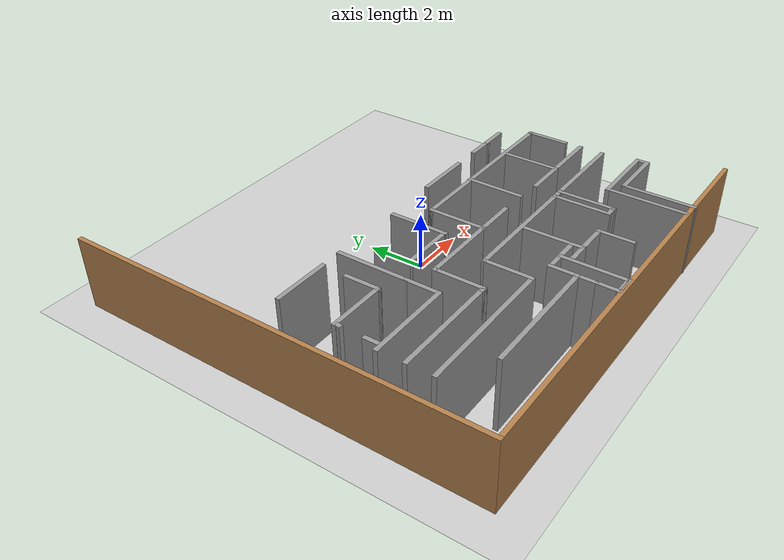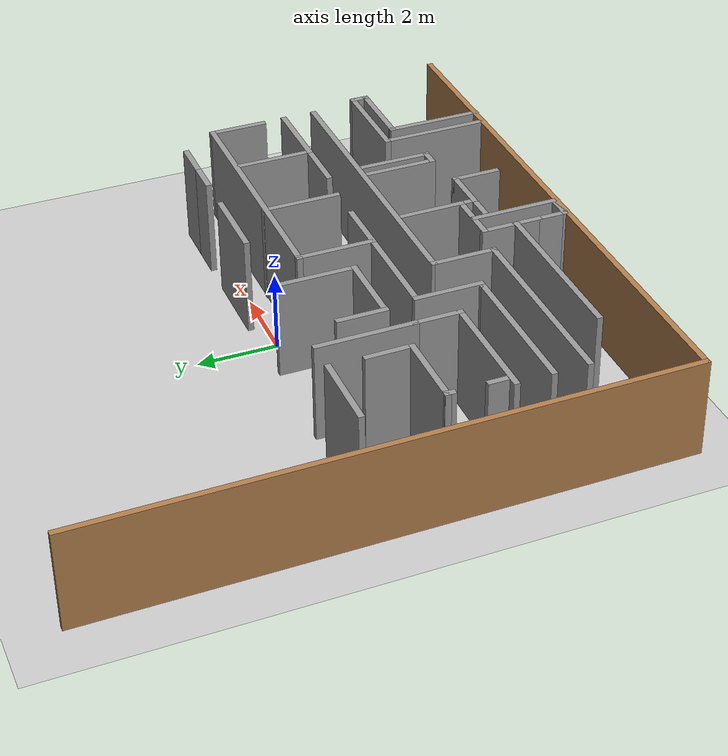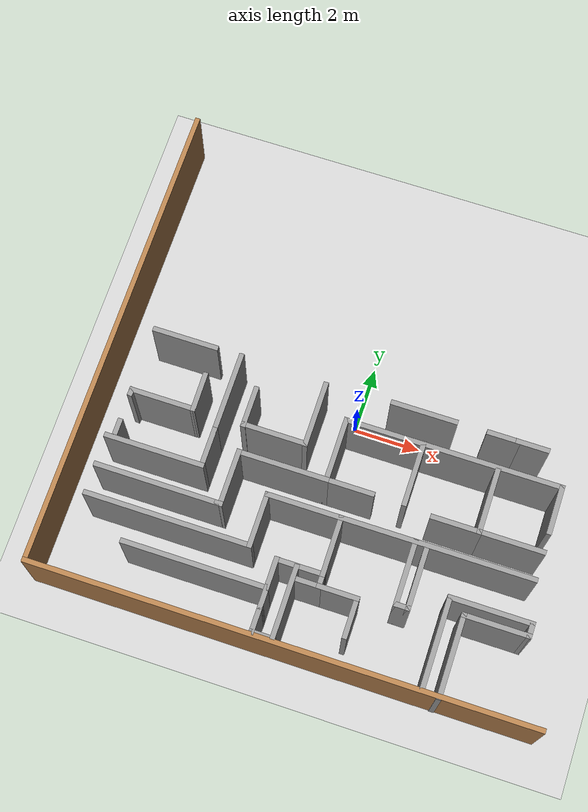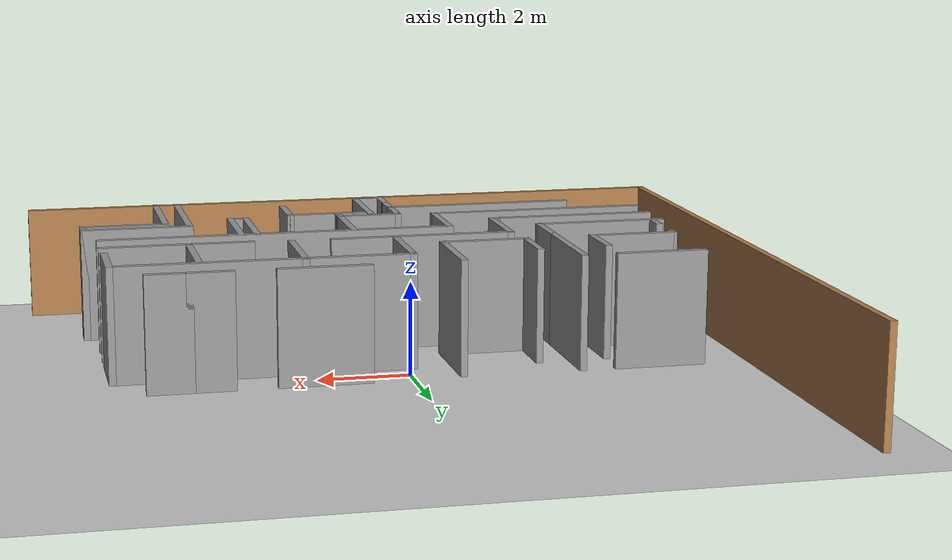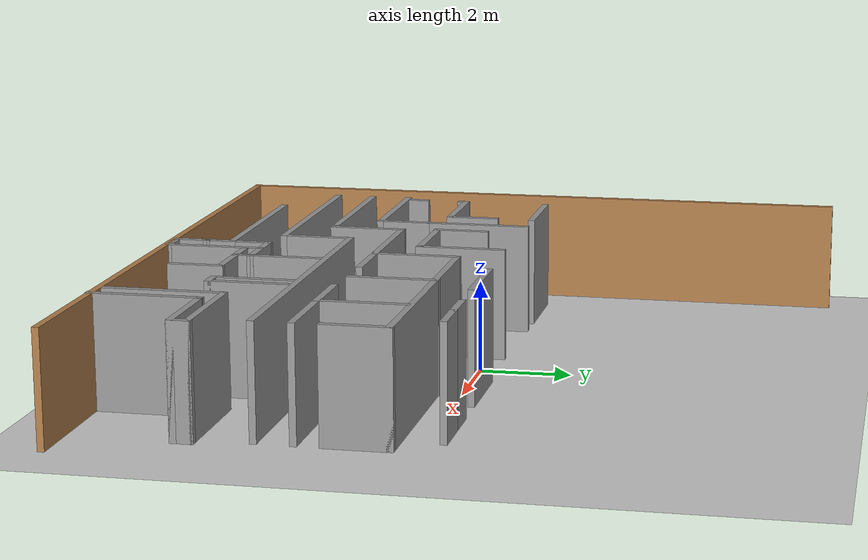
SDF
<sdf version="1.7">
 <world name="default">
  <model name="ground_plane">
   <static>1</static>
   <link name="link">
    <collision name="collision">
     <geometry><plane><normal>0 0 1</normal><size>100 100</size></plane></geometry>
     <surface><friction><ode><mu>100</mu><mu2>50</mu2></ode></friction></surface>
    </collision>
    <visual name="visual">
     <cast_shadows>0</cast_shadows>
     <geometry><plane><normal>0 0 1</normal><size>100 100</size></plane></geometry>
     <material>
      <script><uri>file://media/materials/scripts/gazebo.material</uri><name>Gazebo/Grey</name></script>
     </material>
    </visual>
   </link>
  </model>
  <model name="nidar1">
   <link name="Wall_100">
    <collision name="Wall_100_Collision">
     <geometry><box><size>1.25 0.15 2.5</size></box></geometry>
     <pose>0 0 1.25 0 -0 0</pose>
    </collision>
    <visual name="Wall_100_Visual">
     <pose>0 0 1.25 0 -0 0</pose>
     <geometry><box><size>1.25 0.15 2.5</size></box></geometry>
     <material>
      <script><uri>file://media/materials/scripts/gazebo.material</uri><name>Gazebo/Grey</name></script>
      <ambient>1 1 1 1</ambient>
     </material>
     <meta><layer>0</layer></meta>
    </visual>
    <pose>-3.64531 -2.55736 0 0 -0 -1.5708</pose>
   </link>
   <link name="Wall_101">
    <collision name="Wall_101_Collision">
     <geometry><box><size>3 0.15 2.5</size></box></geometry>
     <pose>0 0 1.25 0 -0 0</pose>
    </collision>
    <visual name="Wall_101_Visual">
     <pose>0 0 1.25 0 -0 0</pose>
     <geometry><box><size>3 0.15 2.5</size></box></geometry>
     <material>
      <script><uri>file://media/materials/scripts/gazebo.material</uri><name>Gazebo/Grey</name></script>
      <ambient>1 1 1 1</ambient>
     </material>
     <meta><layer>0</layer></meta>
    </visual>
    <pose>-5.07031 -3.10737 0 0 -0 3.14159</pose>
   </link>
   <link name="Wall_112">
    <collision name="Wall_112_Collision">
     <geometry><box><size>2 0.15 2.5</size></box></geometry>
     <pose>0 0 1.25 0 -0 0</pose>
    </collision>
    <visual name="Wall_112_Visual">
     <pose>0 0 1.25 0 -0 0</pose>
     <geometry><box><size>2 0.15 2.5</size></box></geometry>
     <material>
      <script><uri>file://media/materials/scripts/gazebo.material</uri><name>Gazebo/Grey</name></script>
      <ambient>1 1 1 1</ambient>
     </material>
     <meta><layer>0</layer></meta>
    </visual>
    <pose>1.86152 0.364029 0 0 -0 3.14159</pose>
   </link>
   <link name="Wall_121">
    <collision name="Wall_121_Collision">
     <geometry><box><size>3.75 0.15 2.5</size></box></geometry>
     <pose>0 0 1.25 0 -0 0</pose>
    </collision>
    <visual name="Wall_121_Visual">
     <pose>0 0 1.25 0 -0 0</pose>
     <geometry><box><size>3.75 0.15 2.5</size></box></geometry>
     <material>
      <script><uri>file://media/materials/scripts/gazebo.material</uri><name>Gazebo/Grey</name></script>
      <ambient>1 1 1 1</ambient>
     </material>
     <meta><layer>0</layer></meta>
    </visual>
    <pose>-4.67849 -4.00366 0 0 -0 0</pose>
   </link>
   <link name="Wall_122">
    <collision name="Wall_122_Collision">
     <geometry><box><size>0.25 0.15 2.5</size></box></geometry>
     <pose>0 0 1.25 0 -0 0</pose>
    </collision>
    <visual name="Wall_122_Visual">
     <pose>0 0 1.25 0 -0 0</pose>
     <geometry><box><size>0.25 0.15 2.5</size></box></geometry>
     <material>
      <script><uri>file://media/materials/scripts/gazebo.material</uri><name>Gazebo/Grey</name></script>
      <ambient>1 1 1 1</ambient>
     </material>
     <meta><layer>0</layer></meta>
    </visual>
    <pose>-2.82849 -4.00366 0 0 -0 0</pose>
   </link>
   <link name="Wall_123">
    <collision name="Wall_123_Collision">
     <geometry><box><size>1.75 0.15 2.5</size></box></geometry>
     <pose>0 0 1.25 0 -0 0</pose>
    </collision>
    <visual name="Wall_123_Visual">
     <pose>0 0 1.25 0 -0 0</pose>
     <geometry><box><size>1.75 0.15 2.5</size></box></geometry>
     <material>
      <script><uri>file://media/materials/scripts/gazebo.material</uri><name>Gazebo/Grey</name></script>
      <ambient>1 1 1 1</ambient>
     </material>
     <meta><layer>0</layer></meta>
    </visual>
    <pose>-2.77849 -3.20366 0 0 -0 1.5708</pose>
   </link>
   <link name="Wall_124">
    <collision name="Wall_124_Collision">
     <geometry><box><size>2.75 0.15 2.5</size></box></geometry>
     <pose>0 0 1.25 0 -0 0</pose>
    </collision>
    <visual name="Wall_124_Visual">
     <pose>0 0 1.25 0 -0 0</pose>
     <geometry><box><size>2.75 0.15 2.5</size></box></geometry>
     <material>
      <script><uri>file://media/materials/scripts/gazebo.material</uri><name>Gazebo/Grey</name></script>
      <ambient>1 1 1 1</ambient>
     </material>
     <meta><layer>0</layer></meta>
    </visual>
    <pose>-1.47849 -2.40366 0 0 -0 0</pose>
   </link>
   <link name="Wall_125">
    <collision name="Wall_125_Collision">
     <geometry><box><size>2 0.15 2.5</size></box></geometry>
     <pose>0 0 1.25 0 -0 0</pose>
    </collision>
    <visual name="Wall_125_Visual">
     <pose>0 0 1.25 0 -0 0</pose>
     <geometry><box><size>2 0.15 2.5</size></box></geometry>
     <material>
      <script><uri>file://media/materials/scripts/gazebo.material</uri><name>Gazebo/Grey</name></script>
      <ambient>1 1 1 1</ambient>
     </material>
     <meta><layer>0</layer></meta>
    </visual>
    <pose>-0.178487 -1.47866 0 0 -0 1.5708</pose>
   </link>
   <link name="Wall_126">
    <collision name="Wall_126_Collision">
     <geometry><box><size>6.5 0.15 2.5</size></box></geometry>
     <pose>0 0 1.25 0 -0 0</pose>
    </collision>
    <visual name="Wall_126_Visual">
     <pose>0 0 1.25 0 -0 0</pose>
     <geometry><box><size>6.5 0.15 2.5</size></box></geometry>
     <material>
      <script><uri>file://media/materials/scripts/gazebo.material</uri><name>Gazebo/Grey</name></script>
      <ambient>1 1 1 1</ambient>
     </material>
     <meta><layer>0</layer></meta>
    </visual>
    <pose>2.99651 -0.553664 0 0 -0 0</pose>
   </link>
   <link name="Wall_127">
    <collision name="Wall_127_Collision">
     <geometry><box><size>1.5 0.15 2.5</size></box></geometry>
     <pose>0 0 1.25 0 -0 0</pose>
    </collision>
    <visual name="Wall_127_Visual">
     <pose>0 0 1.25 0 -0 0</pose>
     <geometry><box><size>1.5 0.15 2.5</size></box></geometry>
     <material>
      <script><uri>file://media/materials/scripts/gazebo.material</uri><name>Gazebo/Grey</name></script>
      <ambient>1 1 1 1</ambient>
     </material>
     <meta><layer>0</layer></meta>
    </visual>
    <pose>6.17151 -1.22866 0 0 -0 -1.5708</pose>
   </link>
   <link name="Wall_131">
    <collision name="Wall_131_Collision">
     <geometry><box><size>2 0.15 2.5</size></box></geometry>
     <pose>0 0 1.25 0 -0 0</pose>
    </collision>
    <visual name="Wall_131_Visual">
     <pose>0 0 1.25 0 -0 0</pose>
     <geometry><box><size>2 0.15 2.5</size></box></geometry>
     <material>
      <script><uri>file://media/materials/scripts/gazebo.material</uri><name>Gazebo/Grey</name></script>
      <ambient>1 1 1 1</ambient>
     </material>
     <meta><layer>0</layer></meta>
    </visual>
    <pose>5.24651 -2.50366 0 0 -0 3.14159</pose>
   </link>
   <link name="Wall_133">
    <collision name="Wall_133_Collision">
     <geometry><box><size>2 0.15 2.5</size></box></geometry>
     <pose>0 0 1.25 0 -0 0</pose>
    </collision>
    <visual name="Wall_133_Visual">
     <pose>0 0 1.25 0 -0 0</pose>
     <geometry><box><size>2 0.15 2.5</size></box></geometry>
     <material>
      <script><uri>file://media/materials/scripts/gazebo.material</uri><name>Gazebo/Grey</name></script>
      <ambient>1 1 1 1</ambient>
     </material>
     <meta><layer>0</layer></meta>
    </visual>
    <pose>4.32151 -1.57866 0 0 -0 1.5708</pose>
   </link>
   <link name="Wall_137">
    <collision name="Wall_137_Collision">
     <geometry><box><size>7.927 0.15 2.5</size></box></geometry>
     <pose>0 0 1.25 0 -0 0</pose>
    </collision>
    <visual name="Wall_137_Visual">
     <pose>0 0 1.25 0 -0 0</pose>
     <geometry><box><size>7.927 0.15 2.5</size></box></geometry>
     <material>
      <script><uri>file://media/materials/scripts/gazebo.material</uri><name>Gazebo/Grey</name></script>
      <ambient>1 1 1 1</ambient>
     </material>
     <meta><layer>0</layer></meta>
    </visual>
    <pose>2.27248 -3.32839 0 0 -0 -3.14034</pose>
   </link>
   <link name="Wall_138">
    <collision name="Wall_138_Collision">
     <geometry><box><size>1.67818 0.15 2.5</size></box></geometry>
     <pose>0 0 1.25 0 -0 0</pose>
    </collision>
    <visual name="Wall_138_Visual">
     <pose>0 0 1.25 0 -0 0</pose>
     <geometry><box><size>1.67818 0.15 2.5</size></box></geometry>
     <material>
      <script><uri>file://media/materials/scripts/gazebo.material</uri><name>Gazebo/Grey</name></script>
      <ambient>1 1 1 1</ambient>
     </material>
     <meta><layer>0</layer></meta>
    </visual>
    <pose>-1.61601 -4.11057 0 0 -0 -1.5708</pose>
   </link>
   <link name="Wall_145">
    <collision name="Wall_145_Collision">
     <geometry><box><size>1 0.15 2.5</size></box></geometry>
     <pose>0 0 1.25 0 -0 0</pose>
    </collision>
    <visual name="Wall_145_Visual">
     <pose>0 0 1.25 0 -0 0</pose>
     <geometry><box><size>1 0.15 2.5</size></box></geometry>
     <material>
      <script><uri>file://media/materials/scripts/gazebo.material</uri><name>Gazebo/Grey</name></script>
      <ambient>1 1 1 1</ambient>
     </material>
     <meta><layer>0</layer></meta>
    </visual>
    <pose>4.21152 0.364029 0 0 -0 3.14159</pose>
   </link>
   <link name="Wall_150">
    <collision name="Wall_150_Collision">
     <geometry><box><size>1 0.15 2.5</size></box></geometry>
     <pose>0 0 1.25 0 -0 0</pose>
    </collision>
    <visual name="Wall_150_Visual">
     <pose>0 0 1.25 0 -0 0</pose>
     <geometry><box><size>1 0.15 2.5</size></box></geometry>
     <material>
      <script><uri>file://media/materials/scripts/gazebo.material</uri><name>Gazebo/Grey</name></script>
      <ambient>1 1 1 1</ambient>
     </material>
     <meta><layer>0</layer></meta>
    </visual>
    <pose>5.06152 0.364029 0 0 -0 0</pose>
   </link>
   <link name="Wall_154">
    <collision name="Wall_154_Collision">
     <geometry><box><size>1.5 0.15 2.5</size></box></geometry>
     <pose>0 0 1.25 0 -0 0</pose>
    </collision>
    <visual name="Wall_154_Visual">
     <pose>0 0 1.25 0 -0 0</pose>
     <geometry><box><size>1.5 0.15 2.5</size></box></geometry>
     <material>
      <script><uri>file://media/materials/scripts/gazebo.material</uri><name>Gazebo/Grey</name></script>
      <ambient>1 1 1 1</ambient>
     </material>
     <meta><layer>0</layer></meta>
    </visual>
    <pose>0.496513 -2.40366 0 0 -0 0</pose>
   </link>
   <link name="Wall_156">
    <collision name="Wall_156_Collision">
     <geometry><box><size>1.5 0.15 2.5</size></box></geometry>
     <pose>0 0 1.25 0 -0 0</pose>
    </collision>
    <visual name="Wall_156_Visual">
     <pose>0 0 1.25 0 -0 0</pose>
     <geometry><box><size>1.5 0.15 2.5</size></box></geometry>
     <material>
      <script><uri>file://media/materials/scripts/gazebo.material</uri><name>Gazebo/Grey</name></script>
      <ambient>1 1 1 1</ambient>
     </material>
     <meta><layer>0</layer></meta>
    </visual>
    <pose>3.64651 -2.50366 0 0 -0 3.14159</pose>
   </link>
   <link name="Wall_159">
    <collision name="Wall_159_Collision">
     <geometry><box><size>2 0.15 2.5</size></box></geometry>
     <pose>0 0 1.25 0 -0 0</pose>
    </collision>
    <visual name="Wall_159_Visual">
     <pose>0 0 1.25 0 -0 0</pose>
     <geometry><box><size>2 0.15 2.5</size></box></geometry>
     <material>
      <script><uri>file://media/materials/scripts/gazebo.material</uri><name>Gazebo/Grey</name></script>
      <ambient>1 1 1 1</ambient>
     </material>
     <meta><layer>0</layer></meta>
    </visual>
    <pose>2.11079 -1.45942 0 0 -0 -1.5708</pose>
   </link>
   <link name="Wall_167">
    <collision name="Wall_167_Collision">
     <geometry><box><size>4.36304 0.15 2.5</size></box></geometry>
     <pose>0 0 1.25 0 -0 0</pose>
    </collision>
    <visual name="Wall_167_Visual">
     <pose>0 0 1.25 0 -0 0</pose>
     <geometry><box><size>4.36304 0.15 2.5</size></box></geometry>
     <material>
      <script><uri>file://media/materials/scripts/gazebo.material</uri><name>Gazebo/Grey</name></script>
      <ambient>1 1 1 1</ambient>
     </material>
     <meta><layer>0</layer></meta>
    </visual>
    <pose>-2.89355 -5.85839 0 0 -0 0</pose>
   </link>
   <link name="Wall_168">
    <collision name="Wall_168_Collision">
     <geometry><box><size>0.982772 0.15 2.5</size></box></geometry>
     <pose>0 0 1.25 0 -0 0</pose>
    </collision>
    <visual name="Wall_168_Visual">
     <pose>0 0 1.25 0 -0 0</pose>
     <geometry><box><size>0.982772 0.15 2.5</size></box></geometry>
     <material>
      <script><uri>file://media/materials/scripts/gazebo.material</uri><name>Gazebo/Grey</name></script>
      <ambient>1 1 1 1</ambient>
     </material>
     <meta><layer>0</layer></meta>
    </visual>
    <pose>-0.787026 -5.42451 0 0 -0 1.5708</pose>
   </link>
   <link name="Wall_170">
    <collision name="Wall_170_Collision">
     <geometry><box><size>1.5 0.15 2.5</size></box></geometry>
     <pose>0 0 1.25 0 -0 0</pose>
    </collision>
    <visual name="Wall_170_Visual">
     <pose>0 0 1.25 0 -0 0</pose>
     <geometry><box><size>1.5 0.15 2.5</size></box></geometry>
     <material>
      <script><uri>file://media/materials/scripts/gazebo.material</uri><name>Gazebo/Grey</name></script>
      <ambient>1 1 1 1</ambient>
     </material>
     <meta><layer>0</layer></meta>
    </visual>
    <pose>-0.112026 -5.0147 0 0 -0 0</pose>
   </link>
   <link name="Wall_171">
    <collision name="Wall_171_Collision">
     <geometry><box><size>1.82725 0.15 2.5</size></box></geometry>
     <pose>0 0 1.25 0 -0 0</pose>
    </collision>
    <visual name="Wall_171_Visual">
     <pose>0 0 1.25 0 -0 0</pose>
     <geometry><box><size>1.82725 0.15 2.5</size></box></geometry>
     <material>
      <script><uri>file://media/materials/scripts/gazebo.material</uri><name>Gazebo/Grey</name></script>
      <ambient>1 1 1 1</ambient>
     </material>
     <meta><layer>0</layer></meta>
    </visual>
    <pose>0.55803 -4.1761 0 0 -0 1.57669</pose>
   </link>
   <link name="Wall_175">
    <collision name="Wall_175_Collision">
     <geometry><box><size>5 0.15 2.5</size></box></geometry>
     <pose>0 0 1.25 0 -0 0</pose>
    </collision>
    <visual name="Wall_175_Visual">
     <pose>0 0 1.25 0 -0 0</pose>
     <geometry><box><size>5 0.15 2.5</size></box></geometry>
     <material>
      <script><uri>file://media/materials/scripts/gazebo.material</uri><name>Gazebo/Grey</name></script>
      <ambient>1 1 1 1</ambient>
     </material>
     <meta><layer>0</layer></meta>
    </visual>
    <pose>-4.04101 -4.87467 0 0 -0 3.14159</pose>
   </link>
   <link name="Wall_181">
    <collision name="Wall_181_Collision">
     <geometry><box><size>0.75 0.15 2.5</size></box></geometry>
     <pose>0 0 1.25 0 -0 0</pose>
    </collision>
    <visual name="Wall_181_Visual">
     <pose>0 0 1.25 0 -0 0</pose>
     <geometry><box><size>0.75 0.15 2.5</size></box></geometry>
     <material>
      <script><uri>file://media/materials/scripts/gazebo.material</uri><name>Gazebo/Grey</name></script>
      <ambient>1 1 1 1</ambient>
     </material>
     <meta><layer>0</layer></meta>
    </visual>
    <pose>-0.787026 -6.1409 0 0 -0 -1.5708</pose>
   </link>
   <link name="Wall_184">
    <collision name="Wall_184_Collision">
     <geometry><box><size>2.5 0.15 2.5</size></box></geometry>
     <pose>0 0 1.25 0 -0 0</pose>
    </collision>
    <visual name="Wall_184_Visual">
     <pose>0 0 1.25 0 -0 0</pose>
     <geometry><box><size>2.5 0.15 2.5</size></box></geometry>
     <material>
      <script><uri>file://media/materials/scripts/gazebo.material</uri><name>Gazebo/Grey</name></script>
      <ambient>1 1 1 1</ambient>
     </material>
     <meta><layer>0</layer></meta>
    </visual>
    <pose>4.57238 -6.05735 0 0 -0 1.5708</pose>
   </link>
   <link name="Wall_185">
    <collision name="Wall_185_Collision">
     <geometry><box><size>2 0.15 2.5</size></box></geometry>
     <pose>0 0 1.25 0 -0 0</pose>
    </collision>
    <visual name="Wall_185_Visual">
     <pose>0 0 1.25 0 -0 0</pose>
     <geometry><box><size>2 0.15 2.5</size></box></geometry>
     <material>
      <script><uri>file://media/materials/scripts/gazebo.material</uri><name>Gazebo/Grey</name></script>
      <ambient>1 1 1 1</ambient>
     </material>
     <meta><layer>0</layer></meta>
    </visual>
    <pose>5.49738 -4.88235 0 0 -0 0</pose>
   </link>
   <link name="Wall_189">
    <collision name="Wall_189_Collision">
     <geometry><box><size>0.5 0.15 2.5</size></box></geometry>
     <pose>0 0 1.25 0 -0 0</pose>
    </collision>
    <visual name="Wall_189_Visual">
     <pose>0 0 1.25 0 -0 0</pose>
     <geometry><box><size>0.5 0.15 2.5</size></box></geometry>
     <material>
      <script><uri>file://media/materials/scripts/gazebo.material</uri><name>Gazebo/Grey</name></script>
      <ambient>1 1 1 1</ambient>
     </material>
     <meta><layer>0</layer></meta>
    </visual>
    <pose>6.42238 -4.70735 0 0 -0 1.5708</pose>
   </link>
   <link name="Wall_190">
    <collision name="Wall_190_Collision">
     <geometry><box><size>2.5 0.15 2.5</size></box></geometry>
     <pose>0 0 1.25 0 -0 0</pose>
    </collision>
    <visual name="Wall_190_Visual">
     <pose>0 0 1.25 0 -0 0</pose>
     <geometry><box><size>2.5 0.15 2.5</size></box></geometry>
     <material>
      <script><uri>file://media/materials/scripts/gazebo.material</uri><name>Gazebo/Grey</name></script>
      <ambient>1 1 1 1</ambient>
     </material>
     <meta><layer>0</layer></meta>
    </visual>
    <pose>5.24738 -4.53235 0 0 -0 3.14159</pose>
   </link>
   <link name="Wall_191">
    <collision name="Wall_191_Collision">
     <geometry><box><size>2.75 0.15 2.5</size></box></geometry>
     <pose>0 0 1.25 0 -0 0</pose>
    </collision>
    <visual name="Wall_191_Visual">
     <pose>0 0 1.25 0 -0 0</pose>
     <geometry><box><size>2.75 0.15 2.5</size></box></geometry>
     <material>
      <script><uri>file://media/materials/scripts/gazebo.material</uri><name>Gazebo/Grey</name></script>
      <ambient>1 1 1 1</ambient>
     </material>
     <meta><layer>0</layer></meta>
    </visual>
    <pose>4.07238 -5.83235 0 0 -0 -1.5708</pose>
   </link>
   <link name="Wall_193">
    <collision name="Wall_193_Collision">
     <geometry><box><size>2 0.15 2.5</size></box></geometry>
     <pose>0 0 1.25 0 -0 0</pose>
    </collision>
    <visual name="Wall_193_Visual">
     <pose>0 0 1.25 0 -0 0</pose>
     <geometry><box><size>2 0.15 2.5</size></box></geometry>
     <material>
      <script><uri>file://media/materials/scripts/gazebo.material</uri><name>Gazebo/Grey</name></script>
      <ambient>1 1 1 1</ambient>
     </material>
     <meta><layer>0</layer></meta>
    </visual>
    <pose>2.71844 -4.25707 0 0 -0 -1.5708</pose>
   </link>
   <link name="Wall_194">
    <collision name="Wall_194_Collision">
     <geometry><box><size>0.5 0.15 2.5</size></box></geometry>
     <pose>0 0 1.25 0 -0 0</pose>
    </collision>
    <visual name="Wall_194_Visual">
     <pose>0 0 1.25 0 -0 0</pose>
     <geometry><box><size>0.5 0.15 2.5</size></box></geometry>
     <material>
      <script><uri>file://media/materials/scripts/gazebo.material</uri><name>Gazebo/Grey</name></script>
      <ambient>1 1 1 1</ambient>
     </material>
     <meta><layer>0</layer></meta>
    </visual>
    <pose>2.89344 -5.18207 0 0 -0 0</pose>
   </link>
   <link name="Wall_195">
    <collision name="Wall_195_Collision">
     <geometry><box><size>2 0.15 2.5</size></box></geometry>
     <pose>0 0 1.25 0 -0 0</pose>
    </collision>
    <visual name="Wall_195_Visual">
     <pose>0 0 1.25 0 -0 0</pose>
     <geometry><box><size>2 0.15 2.5</size></box></geometry>
     <material>
      <script><uri>file://media/materials/scripts/gazebo.material</uri><name>Gazebo/Grey</name></script>
      <ambient>1 1 1 1</ambient>
     </material>
     <meta><layer>0</layer></meta>
    </visual>
    <pose>3.06844 -4.25707 0 0 -0 1.5708</pose>
   </link>
   <link name="Wall_197">
    <collision name="Wall_197_Collision">
     <geometry><box><size>0.5 0.15 2.5</size></box></geometry>
     <pose>0 0 1.25 0 -0 0</pose>
    </collision>
    <visual name="Wall_197_Visual">
     <pose>0 0 1.25 0 -0 0</pose>
     <geometry><box><size>0.5 0.15 2.5</size></box></geometry>
     <material>
      <script><uri>file://media/materials/scripts/gazebo.material</uri><name>Gazebo/Grey</name></script>
      <ambient>1 1 1 1</ambient>
     </material>
     <meta><layer>0</layer></meta>
    </visual>
    <pose>0.562974 -5.1897 0 0 -0 -1.5708</pose>
   </link>
   <link name="Wall_198">
    <collision name="Wall_198_Collision">
     <geometry><box><size>1.25 0.15 2.5</size></box></geometry>
     <pose>0 0 1.25 0 -0 0</pose>
    </collision>
    <visual name="Wall_198_Visual">
     <pose>0 0 1.25 0 -0 0</pose>
     <geometry><box><size>1.25 0.15 2.5</size></box></geometry>
     <material>
      <script><uri>file://media/materials/scripts/gazebo.material</uri><name>Gazebo/Grey</name></script>
      <ambient>1 1 1 1</ambient>
     </material>
     <meta><layer>0</layer></meta>
    </visual>
    <pose>1.11297 -5.3647 0 0 -0 0</pose>
   </link>
   <link name="Wall_199">
    <collision name="Wall_199_Collision">
     <geometry><box><size>1.25 0.15 2.5</size></box></geometry>
     <pose>0 0 1.25 0 -0 0</pose>
    </collision>
    <visual name="Wall_199_Visual">
     <pose>0 0 1.25 0 -0 0</pose>
     <geometry><box><size>1.25 0.15 2.5</size></box></geometry>
     <material>
      <script><uri>file://media/materials/scripts/gazebo.material</uri><name>Gazebo/Grey</name></script>
      <ambient>1 1 1 1</ambient>
     </material>
     <meta><layer>0</layer></meta>
    </visual>
    <pose>1.66297 -5.9147 0 0 -0 -1.5708</pose>
   </link>
   <link name="Wall_201">
    <collision name="Wall_201_Collision">
     <geometry><box><size>2.25 0.15 2.5</size></box></geometry>
     <pose>0 0 1.25 0 -0 0</pose>
    </collision>
    <visual name="Wall_201_Visual">
     <pose>0 0 1.25 0 -0 0</pose>
     <geometry><box><size>2.25 0.15 2.5</size></box></geometry>
     <material>
      <script><uri>file://media/materials/scripts/gazebo.material</uri><name>Gazebo/Grey</name></script>
      <ambient>1 1 1 1</ambient>
     </material>
     <meta><layer>0</layer></meta>
    </visual>
    <pose>-0.191731 -6.09177 0 0 -0 -1.5708</pose>
   </link>
   <link name="Wall_202">
    <collision name="Wall_202_Collision">
     <geometry><box><size>0.75 0.15 2.5</size></box></geometry>
     <pose>0 0 1.25 0 -0 0</pose>
    </collision>
    <visual name="Wall_202_Visual">
     <pose>0 0 1.25 0 -0 0</pose>
     <geometry><box><size>0.75 0.15 2.5</size></box></geometry>
     <material>
      <script><uri>file://media/materials/scripts/gazebo.material</uri><name>Gazebo/Grey</name></script>
      <ambient>1 1 1 1</ambient>
     </material>
     <meta><layer>0</layer></meta>
    </visual>
    <pose>-0.491731 -7.14177 0 0 -0 3.14159</pose>
   </link>
   <link name="Wall_203">
    <collision name="Wall_203_Collision">
     <geometry><box><size>0.850882 0.15 2.5</size></box></geometry>
     <pose>0 0 1.25 0 -0 0</pose>
    </collision>
    <visual name="Wall_203_Visual">
     <pose>0 0 1.25 0 -0 0</pose>
     <geometry><box><size>0.850882 0.15 2.5</size></box></geometry>
     <material>
      <script><uri>file://media/materials/scripts/gazebo.material</uri><name>Gazebo/Grey</name></script>
      <ambient>1 1 1 1</ambient>
     </material>
     <meta><layer>0</layer></meta>
    </visual>
    <pose>-0.789378 -6.79133 0 0 -0 1.56408</pose>
   </link>
   <link name="Wall_205">
    <collision name="Wall_205_Collision">
     <geometry><box><size>0.75 0.15 2.5</size></box></geometry>
     <pose>0 0 1.25 0 -0 0</pose>
    </collision>
    <visual name="Wall_205_Visual">
     <pose>0 0 1.25 0 -0 0</pose>
     <geometry><box><size>0.75 0.15 2.5</size></box></geometry>
     <material>
      <script><uri>file://media/materials/scripts/gazebo.material</uri><name>Gazebo/Grey</name></script>
      <ambient>1 1 1 1</ambient>
     </material>
     <meta><layer>0</layer></meta>
    </visual>
    <pose>0.262974 -5.3647 0 0 -0 3.14159</pose>
   </link>
   <link name="Wall_3">
    <collision name="Wall_3_Collision">
     <geometry><box><size>14.5 0.15 2.5</size></box></geometry>
     <pose>0 0 1.25 0 -0 0</pose>
    </collision>
    <visual name="Wall_3_Visual">
     <pose>0 0 1.25 0 -0 0</pose>
     <geometry><box><size>14.5 0.15 2.5</size></box></geometry>
     <material>
      <script><uri>file://media/materials/scripts/gazebo.material</uri><name>Gazebo/Wood</name></script>
      <ambient>1 1 1 1</ambient>
     </material>
     <meta><layer>0</layer></meta>
    </visual>
    <pose>-7.39338 -0.037008 0 0 -0 -1.5708</pose>
   </link>
   <link name="Wall_4">
    <collision name="Wall_4_Collision">
     <geometry><box><size>15 0.15 2.5</size></box></geometry>
     <pose>0 0 1.25 0 -0 0</pose>
    </collision>
    <visual name="Wall_4_Visual">
     <pose>0 0 1.25 0 -0 0</pose>
     <geometry><box><size>15 0.15 2.5</size></box></geometry>
     <material>
      <script><uri>file://media/materials/scripts/gazebo.material</uri><name>Gazebo/Wood</name></script>
      <ambient>1 1 1 1</ambient>
     </material>
     <meta><layer>0</layer></meta>
    </visual>
    <pose>0.031617 -7.21201 0 0 -0 0</pose>
   </link>
   <link name="Wall_63">
    <collision name="Wall_63_Collision">
     <geometry><box><size>2 0.15 2.5</size></box></geometry>
     <pose>0 0 1.25 0 -0 0</pose>
    </collision>
    <visual name="Wall_63_Visual">
     <pose>0 0 1.25 0 -0 0</pose>
     <geometry><box><size>2 0.15 2.5</size></box></geometry>
     <material>
      <script><uri>file://media/materials/scripts/gazebo.material</uri><name>Gazebo/Grey</name></script>
      <ambient>1 1 1 1</ambient>
     </material>
     <meta><layer>0</layer></meta>
    </visual>
    <pose>-5.3652 -1.60551 0 0 -0 0</pose>
   </link>
   <link name="Wall_64">
    <collision name="Wall_64_Collision">
     <geometry><box><size>1.22491 0.15 2.5</size></box></geometry>
     <pose>0 0 1.25 0 -0 0</pose>
    </collision>
    <visual name="Wall_64_Visual">
     <pose>0 0 1.25 0 -0 0</pose>
     <geometry><box><size>1.22491 0.15 2.5</size></box></geometry>
     <material>
      <script><uri>file://media/materials/scripts/gazebo.material</uri><name>Gazebo/Grey</name></script>
      <ambient>1 1 1 1</ambient>
     </material>
     <meta><layer>0</layer></meta>
    </visual>
    <pose>-4.43359 -1.06809 0 0 -0 1.5831</pose>
   </link>
   <link name="Wall_70">
    <collision name="Wall_70_Collision">
     <geometry><box><size>2 0.15 2.5</size></box></geometry>
     <pose>0 0 1.25 0 -0 0</pose>
    </collision>
    <visual name="Wall_70_Visual">
     <pose>0 0 1.25 0 -0 0</pose>
     <geometry><box><size>2 0.15 2.5</size></box></geometry>
     <material>
      <script><uri>file://media/materials/scripts/gazebo.material</uri><name>Gazebo/Grey</name></script>
      <ambient>1 1 1 1</ambient>
     </material>
     <meta><layer>0</layer></meta>
    </visual>
    <pose>-5.35198 0.349863 0 0 -0 0</pose>
   </link>
   <link name="Wall_81">
    <collision name="Wall_81_Collision">
     <geometry><box><size>2.5 0.15 2.5</size></box></geometry>
     <pose>0 0 1.25 0 -0 0</pose>
    </collision>
    <visual name="Wall_81_Visual">
     <pose>0 0 1.25 0 -0 0</pose>
     <geometry><box><size>2.5 0.15 2.5</size></box></geometry>
     <material>
      <script><uri>file://media/materials/scripts/gazebo.material</uri><name>Gazebo/Grey</name></script>
      <ambient>1 1 1 1</ambient>
     </material>
     <meta><layer>0</layer></meta>
    </visual>
    <pose>-3.64531 -0.832365 0 0 -0 -1.5708</pose>
   </link>
   <link name="Wall_88">
    <collision name="Wall_88_Collision">
     <geometry><box><size>1.27772 0.15 2.5</size></box></geometry>
     <pose>0 0 1.25 0 -0 0</pose>
    </collision>
    <visual name="Wall_88_Visual">
     <pose>0 0 1.25 0 -0 0</pose>
     <geometry><box><size>1.27772 0.15 2.5</size></box></geometry>
     <material>
      <script><uri>file://media/materials/scripts/gazebo.material</uri><name>Gazebo/Grey</name></script>
      <ambient>1 1 1 1</ambient>
     </material>
     <meta><layer>0</layer></meta>
    </visual>
    <pose>-2.91646 -1.03808 0 0 -0 -1.5708</pose>
   </link>
   <link name="Wall_89">
    <collision name="Wall_89_Collision">
     <geometry><box><size>2 0.15 2.5</size></box></geometry>
     <pose>0 0 1.25 0 -0 0</pose>
    </collision>
    <visual name="Wall_89_Visual">
     <pose>0 0 1.25 0 -0 0</pose>
     <geometry><box><size>2 0.15 2.5</size></box></geometry>
     <material>
      <script><uri>file://media/materials/scripts/gazebo.material</uri><name>Gazebo/Grey</name></script>
      <ambient>1 1 1 1</ambient>
     </material>
     <meta><layer>0</layer></meta>
    </visual>
    <pose>-1.99146 -1.58871 0 0 -0 0</pose>
   </link>
   <link name="Wall_90">
    <collision name="Wall_90_Collision">
     <geometry><box><size>2.02773 0.15 2.5</size></box></geometry>
     <pose>0 0 1.25 0 -0 0</pose>
    </collision>
    <visual name="Wall_90_Visual">
     <pose>0 0 1.25 0 -0 0</pose>
     <geometry><box><size>2.02773 0.15 2.5</size></box></geometry>
     <material>
      <script><uri>file://media/materials/scripts/gazebo.material</uri><name>Gazebo/Grey</name></script>
      <ambient>1 1 1 1</ambient>
     </material>
     <meta><layer>0</layer></meta>
    </visual>
    <pose>-1.06646 -0.663076 0 0 -0 1.5708</pose>
   </link>
   <link name="Wall_96">
    <collision name="Wall_96_Collision">
     <geometry><box><size>0.275872 0.15 2.5</size></box></geometry>
     <pose>0 0 1.25 0 -0 0</pose>
    </collision>
    <visual name="Wall_96_Visual">
     <pose>0 0 1.25 0 -0 0</pose>
     <geometry><box><size>0.275872 0.15 2.5</size></box></geometry>
     <material>
      <script><uri>file://media/materials/scripts/gazebo.material</uri><name>Gazebo/Grey</name></script>
      <ambient>1 1 1 1</ambient>
     </material>
     <meta><layer>0</layer></meta>
    </visual>
    <pose>-6.28359 -1.66809 0 0 -0 -1.67606</pose>
   </link>
   <link name="Wall_98">
    <collision name="Wall_98_Collision">
     <geometry><box><size>0.5 0.15 2.5</size></box></geometry>
     <pose>0 0 1.25 0 -0 0</pose>
    </collision>
    <visual name="Wall_98_Visual">
     <pose>0 0 1.25 0 -0 0</pose>
     <geometry><box><size>0.5 0.15 2.5</size></box></geometry>
     <material>
      <script><uri>file://media/materials/scripts/gazebo.material</uri><name>Gazebo/Grey</name></script>
      <ambient>1 1 1 1</ambient>
     </material>
     <meta><layer>0</layer></meta>
    </visual>
    <pose>-6.28798 -2.77836 0 0 -0 -1.5708</pose>
   </link>
   <static>1</static>
  </model>
 </world>
</sdf>
